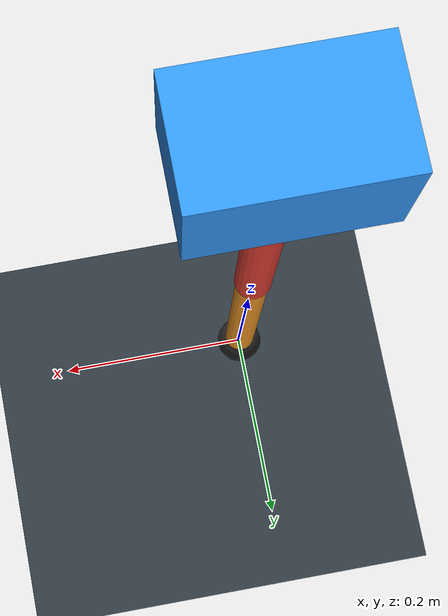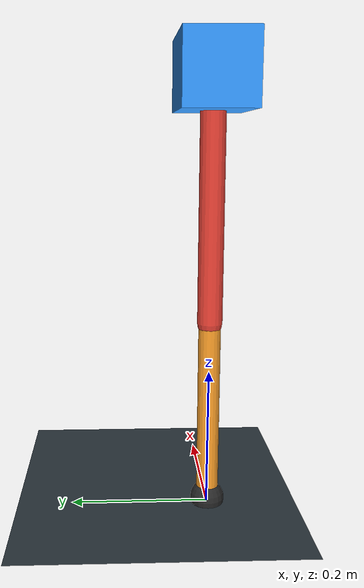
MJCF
<mujoco model="single_axis_two_bar">
  <compiler angle="radian" inertiafromgeom="true"/>
  <option timestep="0.001" integrator="implicitfast" gravity="0 0 -9.81"/>
  <default>
    <joint damping="0.08"/>
    <geom friction="1.2 0.01 0.0001" condim="3"/>
  </default>
  <worldbody>
    <geom name="floor" type="plane" size="5 5 0.1" rgba="0.18 0.22 0.25 1"/>
    <body name="carriage" pos="0 0 0.6184222600506691">
      <joint name="pole_slide" type="slide" axis="0 0 1"/>
      <geom name="payload" type="box" size="0.08 0.05 0.05" mass="2.5349849213150017" rgba="0.2 0.6 1 1"/>
      <body name="thigh" pos="0 0 0">
        <joint name="hip" type="hinge" axis="0 1 0"/>
        <geom name="thigh_link" type="capsule" fromto="0 0 0 0 0 -0.34543974914549896" size="0.018" mass="0.2461303858497272" rgba="0.9 0.25 0.2 1"/>
        <body name="shank" pos="0 0 -0.34543974914549896">
          <joint name="knee" type="hinge" axis="0 1 0"/>
          <geom name="shank_link" type="capsule" fromto="0 0 0 0 0 -0.26633577667993313" size="0.016" mass="0.18976776020123762" rgba="0.95 0.6 0.15 1"/>
          <geom name="foot" type="sphere" pos="0 0 -0.26633577667993313" size="0.025" mass="0.03" rgba="0.15 0.15 0.15 1"/>
          <site name="toe" pos="0 0 -0.26633577667993313" size="0.008"/>
        </body>
      </body>
    </body>
  </worldbody>
  <actuator>
    <motor name="hip_motor" joint="hip" ctrlrange="-40.88309494080894 40.88309494080894"/>
    <motor name="knee_motor" joint="knee" ctrlrange="-94.16898042117423 94.16898042117423"/>
  </actuator>
</mujoco>
